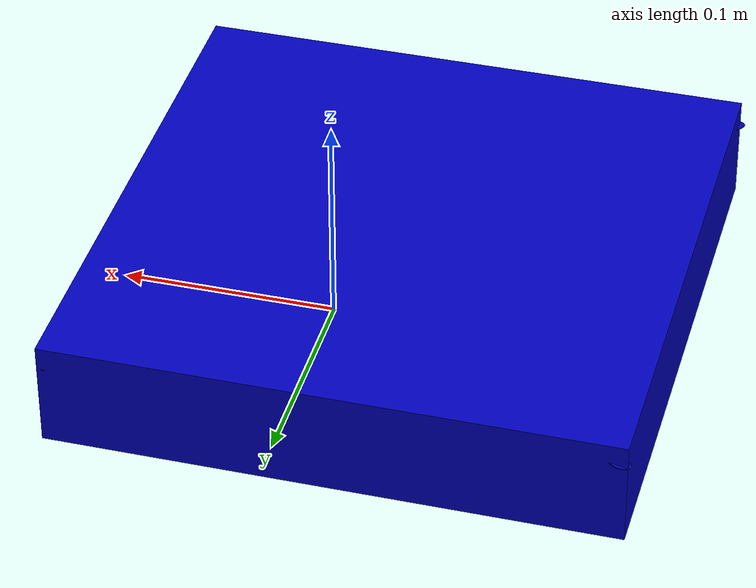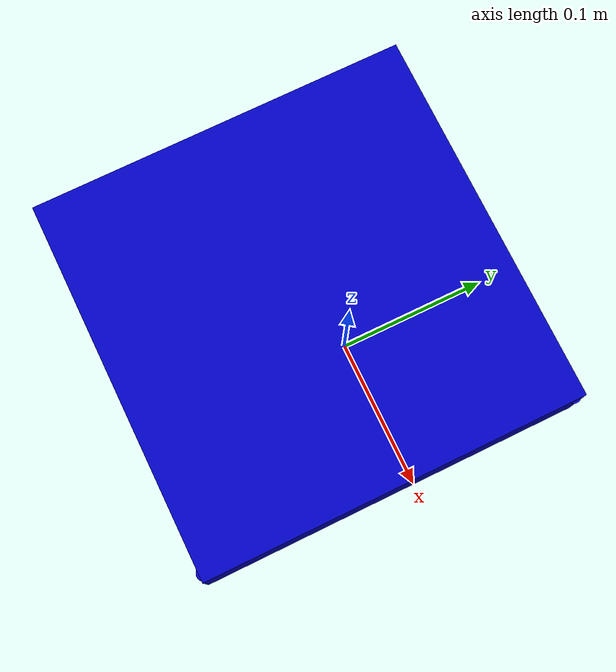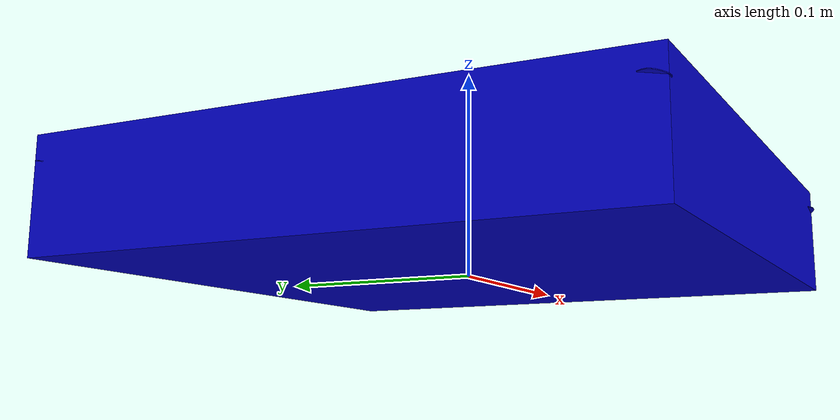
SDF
<?xml version="1.0" encoding="utf-8"?>
<sdf version="1.5">
  <model name="Quadrotor">
    <pose>0 0 0.0456 0 0 0</pose>
    <plugin name="clock" filename="libgz_clock.so">
      <topic>/gazebo/frc/time</topic>
    </plugin>
    <link name="Main_Body">
      <gravity>1</gravity>
      <self_collide>0</self_collide>
      <pose>-0.030499778763354 -0.0150007433100538 -0.0253368490908868 1.5707963267949 0 6.91838908175314E-15</pose>
      <must_be_base_link>1</must_be_base_link>
      <velocity_decay>
        <linear>0</linear>
        <angular>0</angular>
      </velocity_decay>
      <inertial>
        <mass>0.13525116882176</mass>
        <pose>0 0 0 0 0 0</pose>
        <inertia>
          <ixx>0.000317862669424313</ixx>
          <ixy>4.22883029636484E-10</ixy>
          <ixz>4.69023427971284E-10</ixz>
          <iyy>0.000600538169108785</iyy>
          <iyz>1.42076052497298E-09</iyz>
          <izz>0.000330784470981439</izz>
        </inertia>
      </inertial>
      <collision name="Main_Body_collision">
        <pose>-2.21236645809856E-07 -0.0202631509091132 -7.433100534732E-07 0 0 0</pose>
        <geometry>
          <mesh>
            <scale>1 1 1</scale>
            <uri>model://Quadrotor/meshes/Main_Body_col.STL</uri>
          </mesh>
        </geometry>
        <surface>
          <contact>
            <ode />
          </contact>
          <friction>
            <ode>
              <mu>0</mu>
              <mu2>0</mu2>
            </ode>
          </friction>
        </surface>
      </collision>
      <visual name="Main_Body_visual">
        <pose>-2.21236645809856E-07 -0.0202631509091132 -7.433100534732E-07 0 0 0</pose>
        <material>
          <ambient>0 0 0.75 1</ambient>
          <diffuse>0 0 0.75 1</diffuse>
        </material>
        <geometry>
          <mesh>
            <scale>1 1 1</scale>
            <uri>model://Quadrotor/meshes/Main_Body.STL</uri>
          </mesh>
        </geometry>
      </visual>
    </link>
    <link name="Hel_1">
      <gravity>1</gravity>
      <self_collide>0</self_collide>
      <pose>-0.115352813742385 -0.0998528137423862 -0.0123189988839659 0 0 0</pose>
      <must_be_base_link>0</must_be_base_link>
      <velocity_decay>
        <linear>0</linear>
        <angular>0</angular>
      </velocity_decay>
      <inertial>
        <mass>0.000954530577314195</mass>
        <pose>0 0 0 0 0 0</pose>
        <inertia>
          <ixx>2.81385625747555E-07</ixx>
          <ixy>7.67943755771322E-25</ixy>
          <ixz>2.91544908221316E-07</ixz>
          <iyy>6.0949206287129E-07</iyy>
          <iyz>5.03088422234381E-25</iyz>
          <izz>3.32004434341938E-07</izz>
        </inertia>
      </inertial>
      <collision name="Hel_1_collision">
        <pose>0.085 0.085 -0.03 1.5707963267949 0 0</pose>
        <geometry>
          <mesh>
            <scale>1 1 1</scale>
            <uri>model://Quadrotor/meshes/Hel_1_col.STL</uri>
          </mesh>
        </geometry>
        <surface>
          <contact>
            <ode />
          </contact>
          <friction>
            <ode>
              <mu>0</mu>
              <mu2>0</mu2>
            </ode>
          </friction>
        </surface>
      </collision>
      <visual name="Hel_1_visual">
        <pose>0.085 0.085 -0.03 1.5707963267949 0 0</pose>
        <material>
          <ambient>0 0 0.75 1</ambient>
          <diffuse>0 0 0.75 1</diffuse>
        </material>>
        <geometry>
          <mesh>
            <scale>1 1 1</scale>
            <uri>model://Quadrotor/meshes/Hel_1.STL</uri>
          </mesh>
        </geometry>
      </visual>
    </link>
    <joint name="Main_Body-Hel_1" type="revolute">
      <parent>Main_Body</parent>
      <child>Hel_1</child>
      <pose>-1.79023462720806E-15 0 -1.81799020282369E-15 0 6.81925780211572E-14 1.57079632679496</pose>
      <axis>
        <xyz>0 0 1</xyz>
        <dynamics>
          <damping>0</damping>
          <friction>0</friction>
        </dynamics>
        <limit>
          <effort>1</effort>
        </limit>
      </axis>
    </joint>
    <link name="Hel_2">
      <gravity>1</gravity>
      <self_collide>0</self_collide>
      <pose>0.0543528137423864 -0.0998528137423854 -0.0123189988839659 0 0 0</pose>
      <must_be_base_link>0</must_be_base_link>
      <velocity_decay>
        <linear>0</linear>
        <angular>0</angular>
      </velocity_decay>
      <inertial>
        <mass>0.000954530577314196</mass>
        <pose>0 0 0 0 0 0</pose>
        <inertia>
          <ixx>3.32004434341938E-07</ixx>
          <ixy>9.44803313118804E-26</ixy>
          <ixz>2.91544908221317E-07</ixz>
          <iyy>6.09492062871292E-07</iyy>
          <iyz>3.14707955452116E-24</iyz>
          <izz>2.81385625747558E-07</izz>
        </inertia>
      </inertial>
      <collision name="Hel_2_collision">
        <pose>-0.085 0.085 -0.03 1.5707963267949 0 0</pose>
        <geometry>
          <mesh>
            <scale>1 1 1</scale>
            <uri>model://Quadrotor/meshes/Hel_2_col.STL</uri>
          </mesh>
        </geometry>
        <surface>
          <contact>
            <ode />
          </contact>
          <friction>
            <ode>
              <mu>0</mu>
              <mu2>0</mu2>
            </ode>
          </friction>
        </surface>
      </collision>
      <visual name="Hel_2_visual">
        <pose>-0.085 0.085 -0.03 1.5707963267949 0 0</pose>
        <material>
          <ambient>0 0 0.75 1</ambient>
          <diffuse>0 0 0.75 1</diffuse>
        </material>
        <geometry>
          <mesh>
            <scale>1 1 1</scale>
            <uri>model://Quadrotor/meshes/Hel_2.STL</uri>
          </mesh>
        </geometry>
      </visual>
    </link>
    <joint name="Main_Body-Hel_2" type="revolute">
      <parent>Main_Body</parent>
      <child>Hel_2</child>
      <pose>-2.27595720048157E-15 0 2.26207941267376E-15 0 0 0</pose>
      <axis>
        <xyz>0 0 1</xyz>
        <dynamics>
          <damping>0</damping>
          <friction>0</friction>
        </dynamics>
        <limit>
          <effort>1</effort>
        </limit>
      </axis>
    </joint>
    <link name="Hel_3">
      <gravity>1</gravity>
      <self_collide>0</self_collide>
      <pose>-0.115352813742385 0.0698528137423855 -0.012318998883966 0 0 0</pose>
      <must_be_base_link>0</must_be_base_link>
      <velocity_decay>
        <linear>0</linear>
        <angular>0</angular>
      </velocity_decay>
      <inertial>
        <mass>0.000954530577314195</mass>
        <pose>0 0 0 0 0 0</pose>
        <inertia>
          <ixx>3.32004434341941E-07</ixx>
          <ixy>3.57858027691236E-23</ixy>
          <ixz>2.91544908221316E-07</ixz>
          <iyy>6.09492062871291E-07</iyy>
          <iyz>3.1797890477376E-23</iyz>
          <izz>2.81385625747553E-07</izz>
        </inertia>
      </inertial>
      <collision name="Hel_3_collision">
        <pose>0.085 -0.085 -0.03 1.5707963267949 0 0</pose>
        <geometry>
          <mesh>
            <scale>1 1 1</scale>
            <uri>model://Quadrotor/meshes/Hel_3_col.STL</uri>
          </mesh>
        </geometry>
        <surface>
          <contact>
            <ode />
          </contact>
          <friction>
            <ode>
              <mu>0</mu>
              <mu2>0</mu2>
            </ode>
          </friction>
        </surface>
      </collision>
      <visual name="Hel_3_visual">
        <pose>0.085 -0.085 -0.03 1.5707963267949 0 0</pose>
       <material>
          <ambient>0 0 0.75 1</ambient>
          <diffuse>0 0 0.75 1</diffuse>
        </material>
        <geometry>
          <mesh>
            <scale>1 1 1</scale>
            <uri>model://Quadrotor/meshes/Hel_3.STL</uri>
          </mesh>
        </geometry>
      </visual>
    </link>
    <joint name="Main_Body-Hel_3" type="revolute">
      <parent>Main_Body</parent>
      <child>Hel_3</child>
      <pose>2.3037127760972E-15 0 -2.23432383705813E-15 0 0 0</pose>
      <axis>
        <xyz>0 0 1</xyz>
        <dynamics>
          <damping>0</damping>
          <friction>0</friction>
        </dynamics>
        <limit>
          <effort>1</effort>
        </limit>
      </axis>
    </joint>
    <link name="Hel_4">
      <gravity>1</gravity>
      <self_collide>0</self_collide>
      <pose>0.0543528137423862 0.069852813742385 -0.012318998883966 0 0 0</pose>
      <must_be_base_link>0</must_be_base_link>
      <velocity_decay>
        <linear>0</linear>
        <angular>0</angular>
      </velocity_decay>
      <inertial>
        <mass>0.000954530577314195</mass>
        <pose>0 0 0 0 0 0</pose>
        <inertia>
          <ixx>2.81385625747551E-07</ixx>
          <ixy>8.01694670835355E-24</ixy>
          <ixz>2.91544908221316E-07</ixz>
          <iyy>6.09492062871291E-07</iyy>
          <iyz>1.28745134274154E-23</iyz>
          <izz>3.32004434341943E-07</izz>
        </inertia>
      </inertial>
      <collision name="Hel_4_collision">
        <pose>-0.085 -0.085 -0.03 1.5707963267949 0 0</pose>
        <geometry>
          <mesh>
            <scale>1 1 1</scale>
            <uri>model://Quadrotor/meshes/Hel_4_col.STL</uri>
          </mesh>
        </geometry>
        <surface>
          <contact>
            <ode />
          </contact>
          <friction>
            <ode>
              <mu>0</mu>
              <mu2>0</mu2>
            </ode>
          </friction>
        </surface>
      </collision>
      <visual name="Hel_4_visual">
        <pose>-0.085 -0.085 -0.03 1.5707963267949 0 0</pose>
        <material>
          <ambient>0 0 0.75 1</ambient>
          <diffuse>0 0 0.75 1</diffuse>
        </material>
        <geometry>
          <mesh>
            <scale>1 1 1</scale>
            <uri>model://Quadrotor/meshes/Hel_4.STL</uri>
          </mesh>
        </geometry>
      </visual>
    </link>
    <joint name="Main_Body-Hel_4" type="revolute">
      <parent>Main_Body</parent>
      <child>Hel_4</child>
      <pose>2.24820162486594E-15 0 2.27595720048157E-15 0 0 0</pose>
      <axis>
        <xyz>0 0 1</xyz>
        <dynamics>
          <damping>0</damping>
          <friction>0</friction>
        </dynamics>
        <limit>
          <effort>1</effort>
        </limit>
      </axis>
    </joint>
     <plugin name="empuxo"
filename="libgazebo_ros_brushless_plugin.so">
            <topic_FR>Empuxoh1</topic_FR>
            <LinkDir>Hel_1</LinkDir>
            <topic_FL>Empuxoh2</topic_FL>
            <LinkEsq>Hel_2</LinkEsq>
            <DragCte>0.02</DragCte>
     	  </plugin>
     <plugin name="empuxo"
filename="libgazebo_ros_brushless_plugin.so">
            <topic_FR>Empuxoh3</topic_FR>
            <LinkDir>Hel_3</LinkDir>
            <topic_FL>Empuxoh4</topic_FL>
            <LinkEsq>Hel_4</LinkEsq>
            <DragCte>0.02</DragCte>
         </plugin>
     	 <plugin name="VetorEstados"
filename="libgazebo_ros_QuadData.so">
            <NameOfTopic>Estados1</NameOfTopic>
            <NameOfJointR>Main_Body-Hel_4</NameOfJointR>
            <NameOfJointL>Main_Body-Hel_3</NameOfJointL>
            <bodyName>Main_Body</bodyName>
     </plugin>
     <plugin name="VetorEstados"
filename="libgazebo_ros_QuadData.so">
            <NameOfTopic>Estados2</NameOfTopic>
            <NameOfJointR>Main_Body-Hel_2</NameOfJointR>
            <NameOfJointL>Main_Body-Hel_1</NameOfJointL>
            <bodyName>Main_Body</bodyName>
     </plugin>
  </model>
</sdf>
